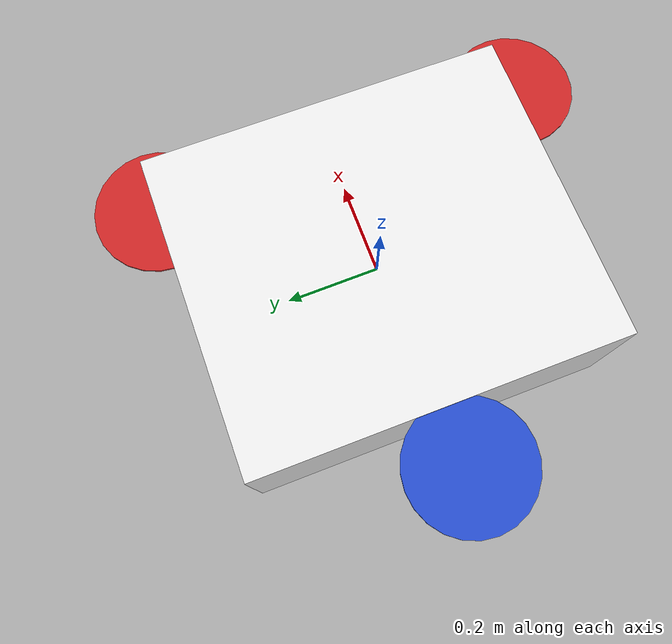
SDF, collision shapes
<sdf version='1.5'>
  <model name='generic_tricopter'>
    <!-- Tricopter body -->
    <link name='base_link'>
      <pose>0 0 0 0 0 0</pose>
      <inertial>
        <pose>5e-05 -3.66e-03 -3.55e-03 0 0 0</pose> <!--CG-->
        <mass>1.5</mass>
        <inertia>
          <ixx>1.122238e-02</ixx>
          <ixy>-1.066152e-06</ixy>
          <ixz>-1.489144e-06</ixz>
	  <iyx>-1.066152e-06</iyx>
          <iyy>2.070884e-02</iyy>
          <iyz>-1.852944e-04</iyz>
	  <izx>-1.489144e-05</izx>
	  <izy>-1.852944e-04</izy>
          <izz>1.034347e-02</izz>
        </inertia>
      </inertial>
      <collision name='base_link_collision'>
	<pose>0 0 0 0 0 0</pose>
        <geometry>
          <box>
            <size>0.675 0.7794 0.315</size>
          </box>
        </geometry>
        <surface>
          <contact>
            <ode>
              <min_depth>0.001</min_depth>
              <max_vel>10</max_vel>
            </ode>
          </contact>
          <friction>
            <ode/>
          </friction>
        </surface>
      </collision>
      <visual name='arm0'>
        <pose>0.122 -0.1948 0.12 1.57 0 0.5235</pose>
        <geometry>
          <cylinder>
            <length>0.45</length>
            <radius>0.01</radius>
          </cylinder>
        </geometry>
        <material>
          <script>
            <name>Gazebo/White</name>
            <uri>__default__</uri>
          </script>
        </material>
      </visual>
      <visual name='m0'>
        <pose>0.225 -0.3897 0.12 0 0 0</pose>
        <geometry>
          <cylinder>
            <length>0.05</length>
            <radius>0.05</radius>
          </cylinder>
        </geometry>
        <material>
          <script>
            <name>Gazebo/DarkGrey</name>
            <uri>__default__</uri>
          </script>
        </material>
      </visual>
      <visual name='arm1'>
        <pose>0.122 0.1948 0.12 1.57 0 -0.5235</pose>
        <geometry>
          <cylinder>
            <length>0.45</length>
            <radius>0.01</radius>
          </cylinder>
        </geometry>
        <material>
          <script>
            <name>Gazebo/White</name>
            <uri>__default__</uri>
          </script>
        </material>
      </visual>
      <visual name='m1'>
        <pose>0.225 0.3897 0.12 0 0 0</pose>
        <geometry>
          <cylinder>
            <length>0.05</length>
            <radius>0.05</radius>
          </cylinder>
        </geometry>
        <material>
          <script>
            <name>Gazebo/DarkGrey</name>
            <uri>__default__</uri>
          </script>
        </material>
      </visual>
      <visual name='arm2'>
        <pose>-0.22 0 0.12 1.57 0 1.57</pose>
        <geometry>
          <cylinder>
            <length>0.45</length>
            <radius>0.01</radius>
          </cylinder>
        </geometry>
        <material>
          <script>
            <name>Gazebo/White</name>
            <uri>__default__</uri>
          </script>
        </material>
      </visual>
      <visual name='m2'>
        <pose>-0.45 0 0.12 0 0 0</pose>
        <geometry>
          <cylinder>
            <length>0.05</length>
            <radius>0.05</radius>
          </cylinder>
        </geometry>
        <material>
          <script>
            <name>Gazebo/DarkGrey</name>
            <uri>__default__</uri>
          </script>
        </material>
      </visual>
    </link>
    <link name='imu_link'>
      <pose>0 0 0 0 0 0</pose>
      <inertial>
        <pose>0 0 0 0 0 0</pose>
        <mass>0.015</mass>
        <inertia>
          <ixx>1e-05</ixx>
          <ixy>0</ixy>
          <ixz>0</ixz>
          <iyy>1e-05</iyy>
          <iyz>0</iyz>
          <izz>1e-05</izz>
        </inertia>
      </inertial>
    </link>
    <joint name='imu_joint' type='revolute'>
      <child>imu_link</child>
      <parent>base_link</parent>
      <axis>
        <xyz>1 0 0</xyz>
        <limit>
          <lower>0</lower>
          <upper>0</upper>
          <effort>0</effort>
          <velocity>0</velocity>
        </limit>
        <dynamics>
          <spring_reference>0</spring_reference>
          <spring_stiffness>0</spring_stiffness>
        </dynamics>
        <use_parent_model_frame>1</use_parent_model_frame>
      </axis>
    </joint>
    <link name='rotor_0'>
      <pose>0.225 -0.384 0.148 0 0 0</pose>
      <inertial>
        <pose>0 0 0 0 0 0</pose>
        <mass>0.005</mass>
        <inertia>
          <ixx>9.75e-07</ixx>
          <ixy>0</ixy>
          <ixz>0</ixz>
          <iyy>0.000273104</iyy>
          <iyz>0</iyz>
          <izz>0.000274004</izz>
        </inertia>
      </inertial>
      <collision name='rotor_0_collision'>
        <pose>0 0 0 0 0 0</pose>
        <geometry>
          <cylinder>
            <length>0.005</length>
            <radius>0.128</radius>
          </cylinder>
        </geometry>
        <surface>
          <contact>
            <ode/>
          </contact>
          <friction>
            <ode/>
          </friction>
        </surface>
      </collision>
      <visual name='rotor_0_visual'>
        <pose>0 0 0 0 0 0</pose>
        <geometry>
          <mesh>
	    <scale>2.8 2 1</scale>
            <uri>model://generic_tricopter/meshes/prop_cw.dae</uri>
          </mesh>
        </geometry>
        <material>
          <script>
            <name>Gazebo/Red</name>
            <uri>file://media/materials/scripts/gazebo.material</uri>
          </script>
        </material>
      </visual>
      <gravity>1</gravity>
      <velocity_decay/>
      <self_collide>0</self_collide>
    </link>
    <joint name='rotor_0_joint' type='revolute'>
      <child>rotor_0</child>
      <parent>base_link</parent>
      <axis>
        <xyz>0 0 1</xyz>
        <limit>
          <lower>-1e+16</lower>
          <upper>1e+16</upper>
        </limit>
        <dynamics>
          <spring_reference>0</spring_reference>
          <spring_stiffness>0</spring_stiffness>
        </dynamics>
        <use_parent_model_frame>1</use_parent_model_frame>
      </axis>
    </joint>
    <link name='rotor_1'>
      <pose>0.225 0.384 0.148 0 0 0</pose>
      <inertial>
        <pose>0 0 0 0 0 0</pose>
        <mass>0.005</mass>
        <inertia>
          <ixx>9.75e-07</ixx>
          <ixy>0</ixy>
          <ixz>0</ixz>
          <iyy>0.000273104</iyy>
          <iyz>0</iyz>
          <izz>0.000274004</izz>
        </inertia>
      </inertial>
      <collision name='rotor_1_collision'>
        <pose>0 0 0 0 0 0</pose>
        <geometry>
          <cylinder>
            <length>0.005</length>
            <radius>0.128</radius>
          </cylinder>
        </geometry>
        <surface>
          <contact>
            <ode/>
          </contact>
          <friction>
            <ode/>
          </friction>
        </surface>
      </collision>
      <visual name='rotor_1_visual'>
        <pose>0 0 0 0 0 0</pose>
        <geometry>
          <mesh>
	    <scale>2.8 2 1</scale>
            <uri>model://generic_tricopter/meshes/prop_ccw.dae</uri>
          </mesh>
        </geometry>
        <material>
          <script>
            <name>Gazebo/Red</name>
            <uri>file://media/materials/scripts/gazebo.material</uri>
          </script>
        </material>
      </visual>
      <gravity>1</gravity>
      <velocity_decay/>
      <self_collide>0</self_collide>
    </link>
    <joint name='rotor_1_joint' type='revolute'>
      <child>rotor_1</child>
      <parent>base_link</parent>
      <axis>
        <xyz>0 0 1</xyz>
        <limit>
          <lower>-1e+16</lower>
          <upper>1e+16</upper>
        </limit>
        <dynamics>
          <spring_reference>0</spring_reference>
          <spring_stiffness>0</spring_stiffness>
        </dynamics>
        <use_parent_model_frame>1</use_parent_model_frame>
      </axis>
    </joint>
    <link name='rotor_2'>
      <pose>-0.45 0 0.148 0 0 0</pose>
      <inertial>
        <pose>0 0 0 0 0 0</pose>
        <mass>0.005</mass>
        <inertia>
          <ixx>9.75e-07</ixx>
          <ixy>0</ixy>
          <ixz>0</ixz>
          <iyy>0.000273104</iyy>
          <iyz>0</iyz>
          <izz>0.000274004</izz>
        </inertia>
      </inertial>
      <collision name='rotor_2_collision'>
        <pose>0 0 0 0 0 0</pose>
        <geometry>
          <cylinder>
            <length>0.005</length>
            <radius>0.128</radius>
          </cylinder>
        </geometry>
        <surface>
          <contact>
            <ode/>
          </contact>
          <friction>
            <ode/>
          </friction>
        </surface>
      </collision>
      <visual name='rotor_2_visual'>
        <pose>0 0 0 0 0 0</pose>
        <geometry>
          <mesh>
            <scale>2.8 2 1</scale>
            <uri>model://generic_tricopter/meshes/prop_ccw.dae</uri>
          </mesh>
        </geometry>
        <material>
          <script>
            <name>Gazebo/Blue</name>
            <uri>file://media/materials/scripts/gazebo.material</uri>
          </script>
        </material>
      </visual>
      <gravity>1</gravity>
      <velocity_decay/>
      <self_collide>0</self_collide>
    </link>
    <joint name='rotor_2_joint' type='revolute'>
      <child>rotor_2</child>
      <parent>base_link</parent>
      <axis>
        <xyz>0 0 1</xyz>
        <limit>
          <lower>-1e+16</lower>
          <upper>1e+16</upper>
        </limit>
        <dynamics>
          <spring_reference>0</spring_reference>
          <spring_stiffness>0</spring_stiffness>
        </dynamics>
        <use_parent_model_frame>1</use_parent_model_frame>
      </axis>
    </joint>
    <link name='servo_motor'>
      <pose>5e-05 -3.66e-03 -3.55e-03 0 0 0</pose>
      <inertial>
	<mass>9e-03</mass>
        <inertia>
          <ixx>1e-07</ixx>
          <ixy>0.0</ixy>
          <iyy>1e-07</iyy>
          <ixz>0.0</ixz>
          <iyz>0.0</iyz>
          <izz>1e-07</izz>
        </inertia>
      </inertial>
    </link>
    <joint name='tilt_servo_joint' type='revolute'>
      <child>servo_motor</child>
      <parent>base_link</parent>
      <axis>
        <xyz>1 0 0</xyz>
        <limit>
          <lower>-0.2618</lower>  <!-- -15 degrees -->
          <upper>0.2618</upper>  <!-- +15 degrees -->
        </limit>
        <dynamics>
          <spring_reference>0</spring_reference>
          <spring_stiffness>0</spring_stiffness>
        </dynamics>
        <use_parent_model_frame>1</use_parent_model_frame>
      </axis>
    </joint>
    <plugin name='rosbag' filename='librotors_gazebo_multirotor_base_plugin.so'>
      <robotNamespace></robotNamespace>
      <linkName>base_link</linkName>
      <rotorVelocitySlowdownSim>10</rotorVelocitySlowdownSim>
    </plugin>
    <plugin name='front_right_motor_model' filename='librotors_gazebo_motor_model.so'>
      <robotNamespace></robotNamespace>
      <jointName>rotor_0_joint</jointName>
      <linkName>rotor_0</linkName>
      <turningDirection>ccw</turningDirection>
      <timeConstantUp>0.0125</timeConstantUp>
      <timeConstantDown>0.025</timeConstantDown>
      <maxRotVelocity>1500</maxRotVelocity>
      <motorConstant>8.54858e-06</motorConstant>
      <momentConstant>0.06</momentConstant>
      <commandSubTopic>/gazebo/command/motor_speed</commandSubTopic>
      <motorNumber>0</motorNumber>
      <rotorDragCoefficient>0.000806428</rotorDragCoefficient>
      <rollingMomentCoefficient>1e-06</rollingMomentCoefficient>
      <motorSpeedPubTopic>/motor_speed/0</motorSpeedPubTopic>
      <rotorVelocitySlowdownSim>10</rotorVelocitySlowdownSim>
    </plugin>
    <plugin name='front_left_motor_model' filename='librotors_gazebo_motor_model.so'>
      <robotNamespace></robotNamespace>
      <jointName>rotor_1_joint</jointName>
      <linkName>rotor_1</linkName>
      <turningDirection>cw</turningDirection>
      <timeConstantUp>0.0125</timeConstantUp>
      <timeConstantDown>0.025</timeConstantDown>
      <maxRotVelocity>1500</maxRotVelocity>
      <motorConstant>8.54858e-06</motorConstant>
      <momentConstant>0.06</momentConstant>
      <commandSubTopic>/gazebo/command/motor_speed</commandSubTopic>
      <motorNumber>1</motorNumber>
      <rotorDragCoefficient>0.000806428</rotorDragCoefficient>
      <rollingMomentCoefficient>1e-06</rollingMomentCoefficient>
      <motorSpeedPubTopic>/motor_speed/1</motorSpeedPubTopic>
      <rotorVelocitySlowdownSim>10</rotorVelocitySlowdownSim>
    </plugin>
    <plugin name='back_motor_model' filename='librotors_gazebo_motor_model.so'>
      <robotNamespace></robotNamespace>
      <jointName>rotor_2_joint</jointName>
      <tiltJointName>tilt_servo_joint</tiltJointName>
      <linkName>rotor_2</linkName>
      <turningDirection>ccw</turningDirection>
      <timeConstantUp>0.0125</timeConstantUp>
      <timeConstantDown>0.025</timeConstantDown>
      <maxRotVelocity>1500</maxRotVelocity>
      <motorConstant>8.54858e-06</motorConstant>
      <momentConstant>0.06</momentConstant>
      <commandSubTopic>/gazebo/command/motor_speed</commandSubTopic>
      <motorNumber>2</motorNumber>
      <rotorDragCoefficient>0.000806428</rotorDragCoefficient>
      <rollingMomentCoefficient>1e-06</rollingMomentCoefficient>
      <motorSpeedPubTopic>/motor_speed/2</motorSpeedPubTopic>
      <rotorVelocitySlowdownSim>10</rotorVelocitySlowdownSim>
    </plugin>
    <plugin name="gps_plugin" filename="libgazebo_gps_plugin.so">
        <robotNamespace></robotNamespace>
        <gpsNoise>true</gpsNoise>
    </plugin>
    <plugin name='mavlink_interface' filename='librotors_gazebo_mavlink_interface.so'>
      <robotNamespace/>
      <imuSubTopic>/imu</imuSubTopic>
      <gpsSubTopic>/gps</gpsSubTopic>
      <mavlink_addr>INADDR_ANY</mavlink_addr>
      <mavlink_udp_port>14560</mavlink_udp_port>
      <motorSpeedCommandPubTopic>/gazebo/command/motor_speed</motorSpeedCommandPubTopic>
      <control_channels>
        <channel name='rotor_0'>
          <input_index>0</input_index>
          <input_offset>0</input_offset>
          <input_scaling>1200</input_scaling>
          <zero_position_disarmed>0</zero_position_disarmed>
          <zero_position_armed>100</zero_position_armed>
          <joint_control_type>velocity</joint_control_type>
        </channel>
        <channel name='rotor_1'>
          <input_index>1</input_index>
          <input_offset>0</input_offset>
          <input_scaling>1200</input_scaling>
          <zero_position_disarmed>0</zero_position_disarmed>
          <zero_position_armed>100</zero_position_armed>
          <joint_control_type>velocity</joint_control_type>
        </channel>
        <channel name='rotor_2'>
          <input_index>2</input_index>
          <input_offset>0</input_offset>
          <input_scaling>1200</input_scaling>
          <zero_position_disarmed>0</zero_position_disarmed>
          <zero_position_armed>100</zero_position_armed>
          <joint_control_type>velocity</joint_control_type>
        </channel>
	<channel name="tilt_servo">
          <input_index>3</input_index>
          <input_offset>0</input_offset>
          <input_scaling>0.5236</input_scaling> <!-- -15 degrees to 15 degrees -->
          <zero_position_disarmed>0.2618</zero_position_disarmed>
          <zero_position_armed>-0.0436</zero_position_armed> <!-- -2.5 degrees -->
          <joint_control_pid>
	    <p>1</p>
	    <i>0.01</i>
	    <d>0.1</d>
          </joint_control_pid>
          <joint_control_type>position_kinematic</joint_control_type>
          <joint_name>tilt_servo_joint</joint_name>
        </channel>
	<tilt_servo_joint>
          tilt_servo_joint
        </tilt_servo_joint>
      </control_channels>
    </plugin>
    <plugin name='rotors_gazebo_imu_plugin' filename='librotors_gazebo_imu_plugin.so'>
      <robotNamespace></robotNamespace>
      <linkName>imu_link</linkName>
      <imuTopic>/imu</imuTopic>
      <gyroscopeNoiseDensity>0.0003394</gyroscopeNoiseDensity>
      <gyroscopeRandomWalk>3.8785e-05</gyroscopeRandomWalk>
      <gyroscopeBiasCorrelationTime>1000.0</gyroscopeBiasCorrelationTime>
      <gyroscopeTurnOnBiasSigma>0.0087</gyroscopeTurnOnBiasSigma>
      <accelerometerNoiseDensity>0.004</accelerometerNoiseDensity>
      <accelerometerRandomWalk>0.006</accelerometerRandomWalk>
      <accelerometerBiasCorrelationTime>300.0</accelerometerBiasCorrelationTime>
      <accelerometerTurnOnBiasSigma>0.196</accelerometerTurnOnBiasSigma>
    </plugin>
    <static>0</static>
  </model>
</sdf>
